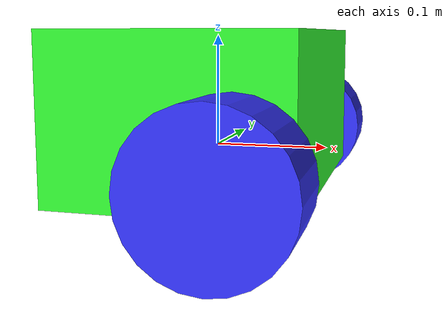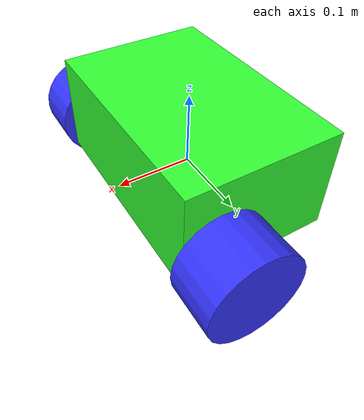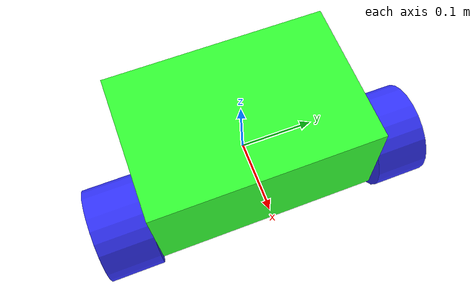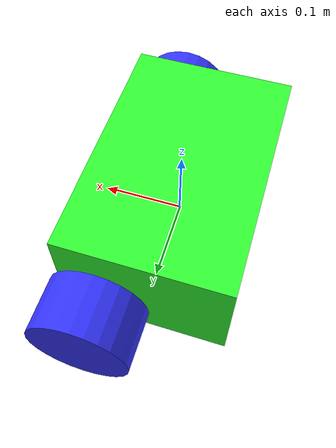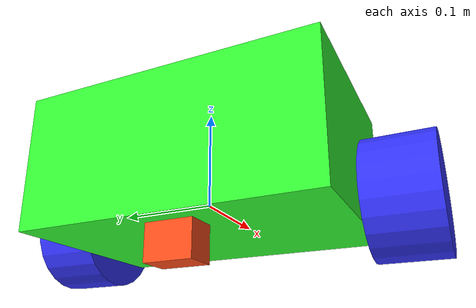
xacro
<?xml version="1.0"?>
<robot xmlns:xacro="https://www.ros.org/wiki/xacro" name="robot_lidar">
    <!-- **********Specific color********** -->
    <material name="orange">
        <color rgba="1.0 0.3 0.1 1.0"/>
    </material>
    <material name="blue">
        <color rgba="0.2 0.2 1.0 1.0"/>
    </material>
    <material name="green">
        <color rgba="0.2 1.0 0.2 1.0"/>
    </material>
    <material name="aluminium">
        <color rgba="0.5 0.5 0.5 0.8"/>
    </material>

    <!-- **********Declare variable********** -->
    <!-- Define the variable for base_joint -->
    <xacro:property name="xOriBaseJoint" value="0.0" />
    <xacro:property name="yOriBaseJoint" value="0.0" />
    <xacro:property name="zOriBaseJoint" value="0.0" />
    <xacro:property name="rollOriBaseJoint" value="0.0" />
    <xacro:property name="pitchOriBaseJoint" value="0.0" />
    <xacro:property name="yallOriBaseJoint" value="0.0" />
    <!-- Define the visual/collision/inertia variable for base_link -->
    <xacro:property name="base_width" value="0.3" />
    <xacro:property name="base_length" value="0.2" />
    <xacro:property name="base_height" value="0.138" />
    <xacro:property name="xOriBaseLink" value="0.0" />
    <xacro:property name="yOriBaseLink" value="0.0" />
    <xacro:property name="zOriBaseLink" value="0.036" />
    <xacro:property name="rollOriBaseLink" value="0.0" />
    <xacro:property name="pitchOriBaseLink" value="0.0" />
    <xacro:property name="yallOriBaseLink" value="0.0" />

    <!-- Define the variable for lwheel_joint -->
    <xacro:property name="xOriLWheelJoint" value="0.0539" />
    <xacro:property name="yOriLWheelJoint" value="0.199" />
    <xacro:property name="zOriLWheelJoint" value="0.0" />
    <xacro:property name="rollOriLWheelJoint" value="-${pi/2}" />
    <xacro:property name="pitchOriLWheelJoint" value="0.0" />
    <xacro:property name="yallOriLWheelJoint" value="0.0" />
    <!-- Define the visual/collision/inertia variable for lwheel_link -->

    <xacro:property name="wheel_radius" value="0.0615" />
    <xacro:property name="wheel_length" value="0.069" />

    <xacro:property name="xOriLWheelLink" value="0.0" />
    <xacro:property name="yOriLWheelLink" value="0.0" />
    <xacro:property name="zOriLWheelLink" value="-0.0145" />
    <xacro:property name="rollOriLWheelLink" value="0.0" />
    <xacro:property name="pitchOriLWheelLink" value="0.0" />
    <xacro:property name="yallOriLWheelLink" value="0.0" />

    <!-- Define the variable for rwheel_joint -->
    <xacro:property name="xOriRWheelJoint" value="0.0539" />
    <xacro:property name="yOriRWheelJoint" value="-0.199" />
    <xacro:property name="zOriRWheelJoint" value="0.0" />
    <xacro:property name="rollOriRWheelJoint" value="${pi/2}" />
    <xacro:property name="pitchOriRWheelJoint" value="0.0" />
    <xacro:property name="yallOriRWheelJoint" value="0.0" />
    <!-- Define the visual/collision/inertia variable for rwheel_link -->
    <xacro:property name="xOriRWheelLink" value="0.0" />
    <xacro:property name="yOriRWheelLink" value="0.0" />
    <xacro:property name="zOriRWheelLink" value="-0.0145" />
    <xacro:property name="rollOriRWheelLink" value="0.0" />
    <xacro:property name="pitchOriRWheelLink" value="0.0" />
    <xacro:property name="yallOriRWheelLink" value="0.0" />

    <!-- Define the variable for support_base_joint -->
    <xacro:property name="xOriSupportBaseJoint" value="-0.06" />
    <xacro:property name="yOriSupportBaseJoint" value="0.0" />
    <xacro:property name="zOriSupportBaseJoint" value="-0.051" />
    <xacro:property name="rollOriSupportBaseJoint" value="0.0" />
    <xacro:property name="pitchOriSupportBaseJoint" value="0.0" />
    <xacro:property name="yallOriSupportBaseJoint" value="0.0" />
    <!-- Define the visual/collision/inertia variable for support_base_link -->
    <xacro:property name="support_base_width" value="0.032" />
    <xacro:property name="suport_base_length" value="0.048" />
    <xacro:property name="suport_base_height" value="0.036" />
    <xacro:property name="xOriSupportBaseLink" value="0.0" />
    <xacro:property name="yOriSupportBaseLink" value="0.0" />
    <xacro:property name="zOriSupportBaseLink" value="0.0" />
    <xacro:property name="rollOriSupportBaseLink" value="0.0" />
    <xacro:property name="pitchOriSupportBaseLink" value="0.0" />
    <xacro:property name="yallOriSupportBaseLink" value="${pi/2}" />

    <!-- **********Macro function********** -->
    <!-- Define the function link visual of box -->
    <xacro:macro name="box_visual" params="length width height color *origin">
        <xacro:insert_block name="origin"/>
        <geometry>
            <box size="${length} ${width} ${height}"/>
        </geometry>
        <material name="${color}" />
    </xacro:macro>

    <!-- Define the function link visual of cylinder-->
    <xacro:macro name="cylinder_visual" params="length radius color *origin">
        <xacro:insert_block name="origin"/>
        <geometry>
            <cylinder length="${length}" radius="${radius}"/>
        </geometry>
        <material name="${color}" />
    </xacro:macro>

    <!-- Define the function link collision of box-->
    <xacro:macro name="box_collision" params="length width height *origin">
        <xacro:insert_block name="origin"/>
        <geometry>
            <box size="${length} ${width} ${height}"/>
        </geometry>
    </xacro:macro>

    <!-- Define the function link collision of cylinder-->
    <xacro:macro name="cylinder_collision" params="length radius *origin">
        <xacro:insert_block name="origin"/>
        <geometry>
            <cylinder length="${length}" radius="${radius}"/>
        </geometry>
    </xacro:macro>

    <!-- Define the function link Inertia of box -->
    <xacro:macro name="box_inertia" params="mass x y z *origin">
        <xacro:insert_block name="origin"/>
        <mass value="${mass}"/>
        <inertia ixx="0.0" ixy="0.0" ixz="0.0" iyy="0.0" iyz="0.0" izz="0.0"/>
    </xacro:macro>

    <!-- Define the function link Inertia of cylinder -->
    <xacro:macro name="cylinder_inertia" params="mass radius *origin">
        <xacro:insert_block name="origin"/>
        <mass value="${mass}"/>
        <inertia ixx="0.0" ixy="0.0" ixz="0.0" iyy="0.0" iyz="0.0" izz="0.0"/>
    </xacro:macro>

    <!-- **********Coding here********** -->
    <!-- Create the base_link -->
    <link name="base_link">
        <visual>
            <xacro:box_visual length="${base_length}" width="${base_width}" height="${base_height}" color="green">
                <origin xyz="${xOriBaseLink} ${yOriBaseLink} ${zOriBaseLink}" rpy="${rollOriBaseLink} ${pitchOriBaseLink} ${yallOriBaseLink}"/>
            </xacro:box_visual>
        </visual>
        <collision>
            <xacro:box_collision length="${base_length}" width="${base_width}" height="${base_height}">
                <origin xyz="${xOriBaseLink} ${yOriBaseLink} ${zOriBaseLink}" rpy="${rollOriBaseLink} ${pitchOriBaseLink} ${yallOriBaseLink}"/>
            </xacro:box_collision>
        </collision>
        <inertial>
            <xacro:box_inertia mass="1.0" x="0.0" y="0.0" z="0.0">
                <origin xyz="${xOriBaseLink} ${yOriBaseLink} ${zOriBaseLink}" rpy="${rollOriBaseLink} ${pitchOriBaseLink} ${yallOriBaseLink}"/>
            </xacro:box_inertia>
        </inertial>
    </link>

    <!-- Create the base_footprint_joint was the shadow of base_link -->
    <joint name="base_footprint_joint" type="fixed">
        <origin xyz="0.0 0.0 0.0" rpy="0.0 0.0 0.0"/>
        <parent link="base_link"/>
        <child link="base_footprint_link"/>
    </joint>

    <!-- Create the of base_footprint_link -->
    <link name="base_footprint_link">
    </link>

    <!-- Create the lwheel_joint -->
    <joint name="lwheel_joint" type="continuous">
        <origin xyz="${xOriLWheelJoint} ${yOriLWheelJoint} ${zOriLWheelJoint}" rpy="${rollOriLWheelJoint} ${pitchOriLWheelJoint} ${yallOriLWheelJoint}"/>
        <parent link="base_link"/>
        <child link="lwheel_link"/>
        <axis xyz="0.0 0.0 1.0"/>
        <!-- The continuous joint doesn't have the limit -->
    </joint>

    <!-- Create the lwheel_link -->
    <link name="lwheel_link">
        <visual>
            <xacro:cylinder_visual length="${wheel_length}" radius="${wheel_radius}" color="blue">
                <origin xyz="${xOriLWheelLink} ${yOriLWheelLink} ${zOriLWheelLink}" rpy="${rollOriLWheelLink} ${pitchOriLWheelLink} ${yallOriLWheelLink}"/>
            </xacro:cylinder_visual>
        </visual>
        <collision>
            <xacro:cylinder_collision length="${wheel_length}" radius="${wheel_radius}">
                <origin xyz="${xOriLWheelLink} ${yOriLWheelLink} ${zOriLWheelLink}" rpy="${rollOriLWheelLink} ${pitchOriLWheelLink} ${yallOriLWheelLink}"/>
            </xacro:cylinder_collision>
        </collision>
        <inertial>
            <xacro:cylinder_inertia mass="1.0" radius="${wheel_radius}" >
                <origin xyz="${xOriLWheelLink} ${yOriLWheelLink} ${zOriLWheelLink}" rpy="${rollOriLWheelLink} ${pitchOriLWheelLink} ${yallOriLWheelLink}"/>
            </xacro:cylinder_inertia>
        </inertial>
    </link>

    <!-- Create the rwheel_joint -->
    <joint name="rwheel_joint" type="continuous">
        <origin xyz="${xOriRWheelJoint} ${yOriRWheelJoint} ${zOriRWheelJoint}" rpy="${rollOriRWheelJoint} ${pitchOriRWheelJoint} ${yallOriRWheelJoint}"/>
        <parent link="base_link"/>
        <child link="rwheel_link"/>
        <axis xyz="0.0 0.0 1.0"/>
        <!-- The continuous joint doesn't have the limit -->
    </joint>

    <!-- Create the rwheel_link -->
    <link name="rwheel_link">
        <visual>
            <xacro:cylinder_visual length="${wheel_length}" radius="${wheel_radius}" color="blue">
                <origin xyz="${xOriRWheelLink} ${yOriRWheelLink} ${zOriRWheelLink}" rpy="${rollOriRWheelLink} ${pitchOriRWheelLink} ${yallOriRWheelLink}"/>
            </xacro:cylinder_visual>
        </visual>
        <collision>
            <xacro:cylinder_collision length="${wheel_length}" radius="${wheel_radius}">
                <origin xyz="${xOriRWheelLink} ${yOriRWheelLink} ${zOriRWheelLink}" rpy="${rollOriRWheelLink} ${pitchOriRWheelLink} ${yallOriRWheelLink}"/>
            </xacro:cylinder_collision>
        </collision>
        <inertial>
            <xacro:cylinder_inertia mass="1.0" radius="${wheel_radius}">
                <origin xyz="${xOriRWheelLink} ${yOriRWheelLink} ${zOriRWheelLink}" rpy="${rollOriRWheelLink} ${pitchOriRWheelLink} ${yallOriRWheelLink}"/>
            </xacro:cylinder_inertia>
        </inertial>
    </link>

    <!-- Create the support_base_joint -->
    <joint name="support_base_joint" type="fixed">
        <origin xyz="${xOriSupportBaseJoint} ${yOriSupportBaseJoint} ${zOriSupportBaseJoint}" rpy="${rollOriSupportBaseJoint} ${pitchOriSupportBaseJoint} ${yallOriSupportBaseJoint}"/>
        <parent link="base_link"/>
        <child link="support_base_link"/>
    </joint>

    <!-- Create the support_base_link -->
    <link name="support_base_link">
        <visual>
            <xacro:box_visual length="${suport_base_length}" width="${support_base_width}" height="${suport_base_height}" color="orange">
                <origin xyz="${xOriSupportBaseLink} ${yOriSupportBaseLink} ${zOriSupportBaseLink}" rpy="${rollOriSupportBaseLink} ${pitchOriSupportBaseLink} ${yallOriSupportBaseLink}"/>
            </xacro:box_visual>
        </visual>
        <collision>
            <xacro:box_collision length="${suport_base_length}" width="${support_base_width}" height="${suport_base_height}">
                <origin xyz="${xOriSupportBaseLink} ${yOriSupportBaseLink} ${zOriSupportBaseLink}" rpy="${rollOriSupportBaseLink} ${pitchOriSupportBaseLink} ${yallOriSupportBaseLink}"/>
            </xacro:box_collision>
        </collision>
        <inertial>
            <xacro:box_inertia mass="1.0" x="0.0" y="0.0" z="0.0">
                <origin xyz="${xOriSupportBaseLink} ${yOriSupportBaseLink} ${zOriSupportBaseLink}" rpy="${rollOriSupportBaseLink} ${pitchOriSupportBaseLink} ${yallOriSupportBaseLink}"/>
            </xacro:box_inertia>
        </inertial>
    </link>

</robot>
